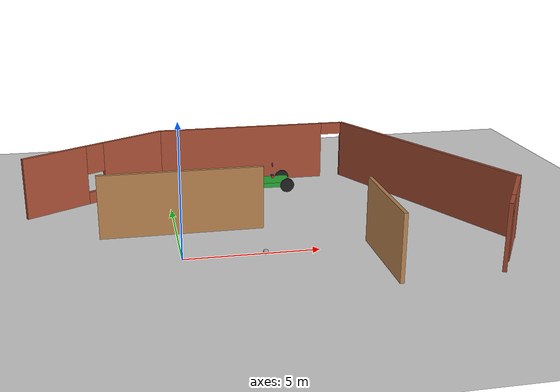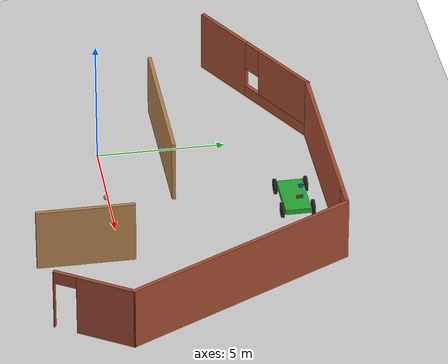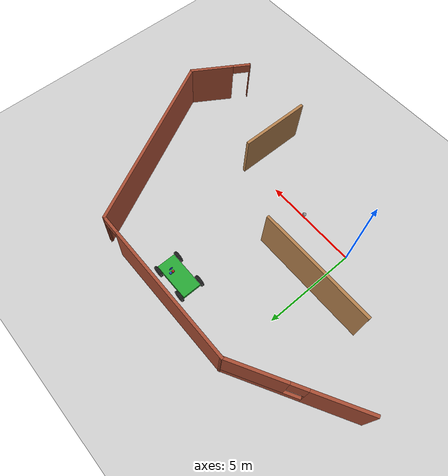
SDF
<sdf version="1.6">
 <world name="default">
  <model name="ground_plane">
   <static>1</static>
   <link name="link">
    <collision name="collision">
     <geometry><plane><normal>0 0 1</normal><size>100 100</size></plane></geometry>
     <surface>
      <contact><collide_bitmask>65535</collide_bitmask></contact>
      <friction><ode><mu>100</mu><mu2>50</mu2></ode></friction>
     </surface>
    </collision>
    <visual name="visual">
     <cast_shadows>0</cast_shadows>
     <geometry><plane><normal>0 0 1</normal><size>100 100</size></plane></geometry>
     <material>
      <script><uri>file://media/materials/scripts/gazebo.material</uri><name>Gazebo/Grey</name></script>
     </material>
    </visual>
   </link>
  </model>
  <model name="car">
   <link name="chassis">
    <pose>0 0 0.3 0 -0 0</pose>
    <collision name="collision"><geometry><box><size>2 1 0.2</size></box></geometry></collision>
    <visual name="visual">
     <geometry><box><size>2 1 0.2</size></box></geometry>
     <material>
      <script><uri>file://media/materials/scripts/gazebo.material</uri><name>Gazebo/Green</name></script>
     </material>
    </visual>
    <inertial>
     <inertia><ixx>1</ixx><ixy>0</ixy><ixz>0</ixz><iyy>1</iyy><iyz>0</iyz><izz>1</izz></inertia>
     <mass>1</mass>
    </inertial>
   </link>
   <link name="front_left_wheel">
    <pose>0.8 0.6 0.3 -0 1.5707 1.5707</pose>
    <collision name="collision">
     <geometry><cylinder><radius>0.3</radius><length>0.1</length></cylinder></geometry>
    </collision>
    <visual name="visual">
     <geometry><cylinder><radius>0.3</radius><length>0.1</length></cylinder></geometry>
     <material>
      <script><uri>file://media/materials/scripts/gazebo.material</uri><name>Gazebo/Black</name></script>
     </material>
    </visual>
    <inertial>
     <inertia><ixx>1</ixx><ixy>0</ixy><ixz>0</ixz><iyy>1</iyy><iyz>0</iyz><izz>1</izz></inertia>
     <mass>1</mass>
    </inertial>
   </link>
   <link name="front_right_wheel">
    <pose>0.8 -0.6 0.3 -0 1.5707 1.5707</pose>
    <collision name="collision">
     <geometry><cylinder><radius>0.3</radius><length>0.1</length></cylinder></geometry>
    </collision>
    <visual name="visual">
     <geometry><cylinder><radius>0.3</radius><length>0.1</length></cylinder></geometry>
     <material>
      <script><uri>file://media/materials/scripts/gazebo.material</uri><name>Gazebo/Black</name></script>
     </material>
    </visual>
    <inertial>
     <inertia><ixx>1</ixx><ixy>0</ixy><ixz>0</ixz><iyy>1</iyy><iyz>0</iyz><izz>1</izz></inertia>
     <mass>1</mass>
    </inertial>
   </link>
   <link name="back_right_wheel">
    <pose>-0.8 -0.6 0.3 -0 1.5707 1.5707</pose>
    <collision name="collision">
     <geometry><cylinder><radius>0.3</radius><length>0.1</length></cylinder></geometry>
    </collision>
    <visual name="visual">
     <geometry><cylinder><radius>0.3</radius><length>0.1</length></cylinder></geometry>
     <material>
      <script><uri>file://media/materials/scripts/gazebo.material</uri><name>Gazebo/Black</name></script>
     </material>
    </visual>
    <inertial>
     <inertia><ixx>1</ixx><ixy>0</ixy><ixz>0</ixz><iyy>1</iyy><iyz>0</iyz><izz>1</izz></inertia>
     <mass>1</mass>
    </inertial>
   </link>
   <link name="back_left_wheel">
    <pose>-0.8 0.6 0.3 -0 1.5707 1.5707</pose>
    <collision name="collision">
     <geometry><cylinder><radius>0.3</radius><length>0.1</length></cylinder></geometry>
    </collision>
    <visual name="visual">
     <geometry><cylinder><radius>0.3</radius><length>0.1</length></cylinder></geometry>
     <material>
      <script><uri>file://media/materials/scripts/gazebo.material</uri><name>Gazebo/Black</name></script>
     </material>
    </visual>
    <inertial>
     <inertia><ixx>1</ixx><ixy>0</ixy><ixz>0</ixz><iyy>1</iyy><iyz>0</iyz><izz>1</izz></inertia>
     <mass>1</mass>
    </inertial>
   </link>
   <link name="gas_pedal">
    <pose>0.3 0.1 0.5 0 -0 0</pose>
    <collision name="collision"><geometry><box><size>0.1 0.1 0.1</size></box></geometry></collision>
    <visual name="visual">
     <geometry><box><size>0.1 0.1 0.1</size></box></geometry>
     <material>
      <script><uri>file://media/materials/scripts/gazebo.material</uri><name>Gazebo/Red</name></script>
     </material>
    </visual>
    <inertial>
     <inertia><ixx>1</ixx><ixy>0</ixy><ixz>0</ixz><iyy>1</iyy><iyz>0</iyz><izz>1</izz></inertia>
     <mass>1</mass>
    </inertial>
   </link>
   <link name="brake_pedal">
    <pose>0.3 0.25 0.5 0 -0 0</pose>
    <collision name="collision"><geometry><box><size>0.1 0.1 0.1</size></box></geometry></collision>
    <visual name="visual">
     <geometry><box><size>0.1 0.1 0.1</size></box></geometry>
     <material>
      <script><uri>file://media/materials/scripts/gazebo.material</uri><name>Gazebo/Blue</name></script>
     </material>
    </visual>
    <inertial>
     <inertia><ixx>1</ixx><ixy>0</ixy><ixz>0</ixz><iyy>1</iyy><iyz>0</iyz><izz>1</izz></inertia>
     <mass>1</mass>
    </inertial>
   </link>
   <link name="steering_wheel">
    <pose>0.3 0.2 1 0 1.5707 0</pose>
    <collision name="collision">
     <geometry><cylinder><radius>0.1</radius><length>0.01</length></cylinder></geometry>
    </collision>
    <visual name="visual">
     <geometry><cylinder><radius>0.1</radius><length>0.01</length></cylinder></geometry>
     <material>
      <script><uri>file://media/materials/scripts/gazebo.material</uri><name>Gazebo/Blue</name></script>
     </material>
    </visual>
    <inertial>
     <inertia><ixx>1</ixx><ixy>0</ixy><ixz>0</ixz><iyy>1</iyy><iyz>0</iyz><izz>1</izz></inertia>
     <mass>1</mass>
    </inertial>
   </link>
   <joint name="gas_joint" type="prismatic">
    <parent>chassis</parent>
    <child>gas_pedal</child>
    <axis>
     <xyz>1 0 0</xyz>
     <limit><lower>0</lower><upper>0.2</upper></limit>
     <use_parent_model_frame>1</use_parent_model_frame>
     <dynamics><spring_reference>0</spring_reference><spring_stiffness>0</spring_stiffness></dynamics>
    </axis>
   </joint>
   <joint name="brake_joint" type="prismatic">
    <parent>chassis</parent>
    <child>brake_pedal</child>
    <axis>
     <xyz>1 0 0</xyz>
     <limit><lower>0</lower><upper>0.2</upper></limit>
     <use_parent_model_frame>1</use_parent_model_frame>
     <dynamics><spring_reference>0</spring_reference><spring_stiffness>0</spring_stiffness></dynamics>
    </axis>
   </joint>
   <joint name="steering_joint" type="revolute">
    <parent>chassis</parent>
    <child>steering_wheel</child>
    <axis>
     <xyz>1 0 0</xyz>
     <limit><lower>-7.853</lower><upper>7.853</upper></limit>
     <use_parent_model_frame>1</use_parent_model_frame>
     <dynamics><spring_reference>0</spring_reference><spring_stiffness>0</spring_stiffness></dynamics>
    </axis>
   </joint>
   <joint name="front_left_joint" type="revolute2">
    <parent>chassis</parent>
    <child>front_left_wheel</child>
    <axis>
     <xyz>0 0 1</xyz>
     <limit><lower>8.64928e-06</lower><upper>8.64928e-06</upper></limit>
     <use_parent_model_frame>1</use_parent_model_frame>
     <dynamics><spring_reference>0</spring_reference><spring_stiffness>0</spring_stiffness></dynamics>
    </axis>
    <axis2>
     <xyz>0 1 0</xyz>
     <use_parent_model_frame>1</use_parent_model_frame>
     <dynamics><spring_reference>0</spring_reference><spring_stiffness>0</spring_stiffness></dynamics>
    </axis2>
    <physics><ode><limit><cfm>0</cfm><erp>0.9</erp></limit></ode></physics>
   </joint>
   <joint name="front_right_joint" type="revolute2">
    <parent>chassis</parent>
    <child>front_right_wheel</child>
    <axis>
     <xyz>0 0 1</xyz>
     <limit><lower>8.64928e-06</lower><upper>8.64928e-06</upper></limit>
     <use_parent_model_frame>1</use_parent_model_frame>
     <dynamics><spring_reference>0</spring_reference><spring_stiffness>0</spring_stiffness></dynamics>
    </axis>
    <axis2>
     <xyz>0 1 0</xyz>
     <use_parent_model_frame>1</use_parent_model_frame>
     <dynamics><spring_reference>0</spring_reference><spring_stiffness>0</spring_stiffness></dynamics>
    </axis2>
    <physics><ode><limit><cfm>0</cfm><erp>0.9</erp></limit></ode></physics>
   </joint>
   <joint name="back_right_joint" type="revolute2">
    <parent>chassis</parent>
    <child>back_right_wheel</child>
    <axis>
     <xyz>0 0 1</xyz>
     <limit><lower>0</lower><upper>0</upper></limit>
     <use_parent_model_frame>1</use_parent_model_frame>
     <dynamics><spring_reference>0</spring_reference><spring_stiffness>0</spring_stiffness></dynamics>
    </axis>
    <axis2>
     <xyz>0 1 0</xyz>
     <use_parent_model_frame>1</use_parent_model_frame>
     <dynamics><spring_reference>0</spring_reference><spring_stiffness>0</spring_stiffness></dynamics>
    </axis2>
    <physics><ode><limit><cfm>0</cfm><erp>0.9</erp></limit></ode></physics>
   </joint>
   <joint name="back_left_joint" type="revolute2">
    <parent>chassis</parent>
    <child>back_left_wheel</child>
    <axis>
     <xyz>0 0 1</xyz>
     <limit><lower>0</lower><upper>0</upper></limit>
     <use_parent_model_frame>1</use_parent_model_frame>
     <dynamics><spring_reference>0</spring_reference><spring_stiffness>0</spring_stiffness></dynamics>
    </axis>
    <axis2>
     <xyz>0 1 0</xyz>
     <use_parent_model_frame>1</use_parent_model_frame>
     <dynamics><spring_reference>0</spring_reference><spring_stiffness>0</spring_stiffness></dynamics>
    </axis2>
    <physics><ode><limit><cfm>0</cfm><erp>0.9</erp></limit></ode></physics>
   </joint>
   <plugin name="vehicle" filename="libVehiclePlugin.so">
    <front_left>front_left_joint</front_left>
    <front_right>front_right_joint</front_right>
    <back_left>back_left_joint</back_left>
    <back_right>back_right_joint</back_right>
    <gas>gas_joint</gas>
    <brake>brake_joint</brake>
    <steering>steering_joint</steering>
    <front_power>10</front_power>
    <rear_power>10</rear_power>
    <tire_angle_range>0.5</tire_angle_range>
    <max_speed>10</max_speed>
    <aero_load>0.1</aero_load>
   </plugin>
   <pose>4.36991 6.9993 -0.002606 -0.000272 0.00092 7.6e-05</pose>
  </model>
  <model name="my_ball">
   <link name="link_0">
    <inertial>
     <mass>1</mass>
     <inertia><ixx>0.1</ixx><ixy>0</ixy><ixz>0</ixz><iyy>0.1</iyy><iyz>0</iyz><izz>0.1</izz></inertia>
    </inertial>
    <visual name="visual">
     <geometry><sphere><radius>0.1</radius></sphere></geometry>
     <material>
      <lighting>1</lighting>
      <script><uri>file://media/materials/scripts/gazebo.material</uri><name>Gazebo/Grey</name></script>
      <shader type="pixel"><normal_map>__default__</normal_map></shader>
      <ambient>1 1 1 1</ambient>
      <diffuse>1 1 1 1</diffuse>
      <specular>1 1 1 1</specular>
      <emissive>1 1 1 1</emissive>
     </material>
    </visual>
    <collision name="collision">
     <geometry><sphere><radius>0.1</radius></sphere></geometry>
     <surface>
      <friction>
       <ode><mu>1</mu><mu2>1</mu2><fdir1>0 0 0</fdir1><slip1>0</slip1><slip2>0</slip2></ode>
       <torsional>
        <coefficient>1</coefficient>
        <patch_radius>0</patch_radius>
        <surface_radius>0</surface_radius>
        <use_patch_radius>1</use_patch_radius>
        <ode><slip>0</slip></ode>
       </torsional>
      </friction>
      <bounce><restitution_coefficient>0</restitution_coefficient><threshold>1e+06</threshold></bounce>
      <contact>
       <collide_without_contact>0</collide_without_contact>
       <collide_without_contact_bitmask>1</collide_without_contact_bitmask>
       <collide_bitmask>1</collide_bitmask>
       <ode>
        <soft_cfm>0</soft_cfm>
        <soft_erp>0.2</soft_erp>
        <kp>1e+13</kp>
        <kd>1</kd>
        <max_vel>0.01</max_vel>
        <min_depth>0</min_depth>
       </ode>
       <bullet>
        <split_impulse>1</split_impulse>
        <split_impulse_penetration_threshold>-0.01</split_impulse_penetration_threshold>
        <soft_cfm>0</soft_cfm>
        <soft_erp>0.2</soft_erp>
        <kp>1e+13</kp>
        <kd>1</kd>
       </bullet>
      </contact>
     </surface>
    </collision>
   </link>
   <static>0</static>
   <pose>2.98691 -0.065546 0.1 0 -0 0</pose>
  </model>
  <model name="office">
   <link name="Wall_10">
    <pose>3.71196 8.6392 0 0 -0 0</pose>
    <visual name="Wall_10_Visual_1">
     <pose>4.12333 0 1.25 0 -0 0</pose>
     <geometry><box><size>0.003332 0.15 2.5</size></box></geometry>
     <material>
      <script><uri>file://media/materials/scripts/gazebo.material</uri><name>Gazebo/Bricks</name></script>
      <ambient>1 1 1 1</ambient>
      <shader type="pixel"/>
      <diffuse>1 1 1 1</diffuse>
      <specular>0.2 0.2 0.2 1</specular>
      <emissive>0 0 0 1</emissive>
     </material>
     <meta><layer>0</layer></meta>
    </visual>
    <visual name="Wall_10_Visual_0">
     <pose>-0.451666 0 1.25 0 -0 0</pose>
     <geometry><box><size>7.34667 0.15 2.5</size></box></geometry>
     <material>
      <script><uri>file://media/materials/scripts/gazebo.material</uri><name>Gazebo/Bricks</name></script>
      <ambient>1 1 1 1</ambient>
      <shader type="pixel"/>
      <diffuse>1 1 1 1</diffuse>
      <specular>0.2 0.2 0.2 1</specular>
      <emissive>0 0 0 1</emissive>
     </material>
     <meta><layer>0</layer></meta>
    </visual>
    <visual name="Wall_10_Visual_2">
     <pose>3.67167 0 2.25 0 -0 0</pose>
     <geometry><box><size>0.9 0.15 0.5</size></box></geometry>
     <material>
      <script><uri>file://media/materials/scripts/gazebo.material</uri><name>Gazebo/Bricks</name></script>
      <ambient>1 1 1 1</ambient>
      <shader type="pixel"/>
      <diffuse>1 1 1 1</diffuse>
      <specular>0.2 0.2 0.2 1</specular>
      <emissive>0 0 0 1</emissive>
     </material>
     <meta><layer>0</layer></meta>
    </visual>
    <collision name="Wall_10_Collision_0">
     <pose>-0.451666 0 1.25 0 -0 0</pose>
     <geometry><box><size>7.34667 0.15 2.5</size></box></geometry>
     <surface>
      <friction>
       <ode><mu>1</mu><mu2>1</mu2><fdir1>0 0 0</fdir1><slip1>0</slip1><slip2>0</slip2></ode>
       <torsional>
        <coefficient>1</coefficient>
        <patch_radius>0</patch_radius>
        <surface_radius>0</surface_radius>
        <use_patch_radius>1</use_patch_radius>
        <ode><slip>0</slip></ode>
       </torsional>
      </friction>
      <bounce><restitution_coefficient>0</restitution_coefficient><threshold>1e+06</threshold></bounce>
      <contact>
       <collide_without_contact>0</collide_without_contact>
       <collide_without_contact_bitmask>1</collide_without_contact_bitmask>
       <collide_bitmask>1</collide_bitmask>
       <ode>
        <soft_cfm>0</soft_cfm>
        <soft_erp>0.2</soft_erp>
        <kp>1e+13</kp>
        <kd>1</kd>
        <max_vel>0.01</max_vel>
        <min_depth>0</min_depth>
       </ode>
       <bullet>
        <split_impulse>1</split_impulse>
        <split_impulse_penetration_threshold>-0.01</split_impulse_penetration_threshold>
        <soft_cfm>0</soft_cfm>
        <soft_erp>0.2</soft_erp>
        <kp>1e+13</kp>
        <kd>1</kd>
       </bullet>
      </contact>
     </surface>
    </collision>
    <collision name="Wall_10_Collision_2">
     <pose>3.67167 0 2.25 0 -0 0</pose>
     <geometry><box><size>0.9 0.15 0.5</size></box></geometry>
     <surface>
      <friction>
       <ode><mu>1</mu><mu2>1</mu2><fdir1>0 0 0</fdir1><slip1>0</slip1><slip2>0</slip2></ode>
       <torsional>
        <coefficient>1</coefficient>
        <patch_radius>0</patch_radius>
        <surface_radius>0</surface_radius>
        <use_patch_radius>1</use_patch_radius>
        <ode><slip>0</slip></ode>
       </torsional>
      </friction>
      <bounce><restitution_coefficient>0</restitution_coefficient><threshold>1e+06</threshold></bounce>
      <contact>
       <collide_without_contact>0</collide_without_contact>
       <collide_without_contact_bitmask>1</collide_without_contact_bitmask>
       <collide_bitmask>1</collide_bitmask>
       <ode>
        <soft_cfm>0</soft_cfm>
        <soft_erp>0.2</soft_erp>
        <kp>1e+13</kp>
        <kd>1</kd>
        <max_vel>0.01</max_vel>
        <min_depth>0</min_depth>
       </ode>
       <bullet>
        <split_impulse>1</split_impulse>
        <split_impulse_penetration_threshold>-0.01</split_impulse_penetration_threshold>
        <soft_cfm>0</soft_cfm>
        <soft_erp>0.2</soft_erp>
        <kp>1e+13</kp>
        <kd>1</kd>
       </bullet>
      </contact>
     </surface>
    </collision>
    <collision name="Wall_10_Collision_1">
     <pose>4.12333 0 1.25 0 -0 0</pose>
     <geometry><box><size>0.003332 0.15 2.5</size></box></geometry>
     <surface>
      <friction>
       <ode><mu>1</mu><mu2>1</mu2><fdir1>0 0 0</fdir1><slip1>0</slip1><slip2>0</slip2></ode>
       <torsional>
        <coefficient>1</coefficient>
        <patch_radius>0</patch_radius>
        <surface_radius>0</surface_radius>
        <use_patch_radius>1</use_patch_radius>
        <ode><slip>0</slip></ode>
       </torsional>
      </friction>
      <bounce><restitution_coefficient>0</restitution_coefficient><threshold>1e+06</threshold></bounce>
      <contact>
       <collide_without_contact>0</collide_without_contact>
       <collide_without_contact_bitmask>1</collide_without_contact_bitmask>
       <collide_bitmask>1</collide_bitmask>
       <ode>
        <soft_cfm>0</soft_cfm>
        <soft_erp>0.2</soft_erp>
        <kp>1e+13</kp>
        <kd>1</kd>
        <max_vel>0.01</max_vel>
        <min_depth>0</min_depth>
       </ode>
       <bullet>
        <split_impulse>1</split_impulse>
        <split_impulse_penetration_threshold>-0.01</split_impulse_penetration_threshold>
        <soft_cfm>0</soft_cfm>
        <soft_erp>0.2</soft_erp>
        <kp>1e+13</kp>
        <kd>1</kd>
       </bullet>
      </contact>
     </surface>
    </collision>
   </link>
   <link name="Wall_12">
    <pose>10.0538 4.3089 0 0 0 -1.1105</pose>
    <inertial>
     <inertia><ixx>0</ixx><ixy>0</ixy><ixz>0</ixz><iyy>0</iyy><iyz>0</iyz><izz>0</izz></inertia>
     <mass>0</mass>
    </inertial>
    <visual name="Wall_12_Visual">
     <pose>0 0 1.25 0 -0 0</pose>
     <geometry><box><size>9.75381 0.15 2.5</size></box></geometry>
     <material>
      <script><uri>file://media/materials/scripts/gazebo.material</uri><name>Gazebo/Bricks</name></script>
      <ambient>0.435294 0.796078 0.67451 1</ambient>
      <shader type="pixel"/>
      <diffuse>1 1 1 1</diffuse>
      <specular>0.2 0.2 0.2 1</specular>
      <emissive>0 0 0 1</emissive>
     </material>
     <meta><layer>0</layer></meta>
    </visual>
    <collision name="Wall_12_Collision">
     <pose>0 0 1.25 0 -0 0</pose>
     <geometry><box><size>9.75381 0.15 2.5</size></box></geometry>
     <surface>
      <friction>
       <ode><mu>1</mu><mu2>1</mu2><fdir1>0 0 0</fdir1><slip1>0</slip1><slip2>0</slip2></ode>
       <torsional>
        <coefficient>1</coefficient>
        <patch_radius>0</patch_radius>
        <surface_radius>0</surface_radius>
        <use_patch_radius>1</use_patch_radius>
        <ode><slip>0</slip></ode>
       </torsional>
      </friction>
      <bounce><restitution_coefficient>0</restitution_coefficient><threshold>1e+06</threshold></bounce>
      <contact>
       <collide_without_contact>0</collide_without_contact>
       <collide_without_contact_bitmask>1</collide_without_contact_bitmask>
       <collide_bitmask>1</collide_bitmask>
       <ode>
        <soft_cfm>0</soft_cfm>
        <soft_erp>0.2</soft_erp>
        <kp>1e+13</kp>
        <kd>1</kd>
        <max_vel>0.01</max_vel>
        <min_depth>0</min_depth>
       </ode>
       <bullet>
        <split_impulse>1</split_impulse>
        <split_impulse_penetration_threshold>-0.01</split_impulse_penetration_threshold>
        <soft_cfm>0</soft_cfm>
        <soft_erp>0.2</soft_erp>
        <kp>1e+13</kp>
        <kd>1</kd>
       </bullet>
      </contact>
     </surface>
    </collision>
   </link>
   <link name="Wall_14">
    <pose>11.3708 -1.34055 0 0 -0 -2.12201</pose>
    <inertial>
     <inertia><ixx>0</ixx><ixy>0</ixy><ixz>0</ixz><iyy>0</iyy><iyz>0</iyz><izz>0</izz></inertia>
     <mass>0</mass>
    </inertial>
    <visual name="Wall_14_Visual_2">
     <pose>1.13537 0 2.25 0 -0 0</pose>
     <geometry><box><size>0.904766 0.15 0.5</size></box></geometry>
     <material>
      <script><uri>file://media/materials/scripts/gazebo.material</uri><name>Gazebo/Bricks</name></script>
      <ambient>0.435294 0.796078 0.67451 1</ambient>
      <shader type="pixel"/>
      <diffuse>1 1 1 1</diffuse>
      <specular>0.2 0.2 0.2 1</specular>
      <emissive>0 0 0 1</emissive>
     </material>
     <meta><layer>0</layer></meta>
    </visual>
    <visual name="Wall_14_Visual_0">
     <pose>-0.469815 0 1.25 0 -0 0</pose>
     <geometry><box><size>2.32261 0.15 2.5</size></box></geometry>
     <material>
      <script><uri>file://media/materials/scripts/gazebo.material</uri><name>Gazebo/Bricks</name></script>
      <ambient>0.435294 0.796078 0.67451 1</ambient>
      <shader type="pixel"/>
      <diffuse>1 1 1 1</diffuse>
      <specular>0.2 0.2 0.2 1</specular>
      <emissive>0 0 0 1</emissive>
     </material>
     <meta><layer>0</layer></meta>
    </visual>
    <visual name="Wall_14_Visual_1">
     <pose>1.60519 0 1.25 0 -0 0</pose>
     <geometry><box><size>0.039702 0.15 2.5</size></box></geometry>
     <material>
      <script><uri>file://media/materials/scripts/gazebo.material</uri><name>Gazebo/Bricks</name></script>
      <ambient>0.435294 0.796078 0.67451 1</ambient>
      <shader type="pixel"/>
      <diffuse>1 1 1 1</diffuse>
      <specular>0.2 0.2 0.2 1</specular>
      <emissive>0 0 0 1</emissive>
     </material>
     <meta><layer>0</layer></meta>
    </visual>
    <collision name="Wall_14_Collision_2">
     <pose>1.13537 0 2.25 0 -0 0</pose>
     <geometry><box><size>0.904766 0.15 0.5</size></box></geometry>
     <surface>
      <friction>
       <ode><mu>1</mu><mu2>1</mu2><fdir1>0 0 0</fdir1><slip1>0</slip1><slip2>0</slip2></ode>
       <torsional>
        <coefficient>1</coefficient>
        <patch_radius>0</patch_radius>
        <surface_radius>0</surface_radius>
        <use_patch_radius>1</use_patch_radius>
        <ode><slip>0</slip></ode>
       </torsional>
      </friction>
      <bounce><restitution_coefficient>0</restitution_coefficient><threshold>1e+06</threshold></bounce>
      <contact>
       <collide_without_contact>0</collide_without_contact>
       <collide_without_contact_bitmask>1</collide_without_contact_bitmask>
       <collide_bitmask>1</collide_bitmask>
       <ode>
        <soft_cfm>0</soft_cfm>
        <soft_erp>0.2</soft_erp>
        <kp>1e+13</kp>
        <kd>1</kd>
        <max_vel>0.01</max_vel>
        <min_depth>0</min_depth>
       </ode>
       <bullet>
        <split_impulse>1</split_impulse>
        <split_impulse_penetration_threshold>-0.01</split_impulse_penetration_threshold>
        <soft_cfm>0</soft_cfm>
        <soft_erp>0.2</soft_erp>
        <kp>1e+13</kp>
        <kd>1</kd>
       </bullet>
      </contact>
     </surface>
    </collision>
    <collision name="Wall_14_Collision_1">
     <pose>1.60519 0 1.25 0 -0 0</pose>
     <geometry><box><size>0.039702 0.15 2.5</size></box></geometry>
     <surface>
      <friction>
       <ode><mu>1</mu><mu2>1</mu2><fdir1>0 0 0</fdir1><slip1>0</slip1><slip2>0</slip2></ode>
       <torsional>
        <coefficient>1</coefficient>
        <patch_radius>0</patch_radius>
        <surface_radius>0</surface_radius>
        <use_patch_radius>1</use_patch_radius>
        <ode><slip>0</slip></ode>
       </torsional>
      </friction>
      <bounce><restitution_coefficient>0</restitution_coefficient><threshold>1e+06</threshold></bounce>
      <contact>
       <collide_without_contact>0</collide_without_contact>
       <collide_without_contact_bitmask>1</collide_without_contact_bitmask>
       <collide_bitmask>1</collide_bitmask>
       <ode>
        <soft_cfm>0</soft_cfm>
        <soft_erp>0.2</soft_erp>
        <kp>1e+13</kp>
        <kd>1</kd>
        <max_vel>0.01</max_vel>
        <min_depth>0</min_depth>
       </ode>
       <bullet>
        <split_impulse>1</split_impulse>
        <split_impulse_penetration_threshold>-0.01</split_impulse_penetration_threshold>
        <soft_cfm>0</soft_cfm>
        <soft_erp>0.2</soft_erp>
        <kp>1e+13</kp>
        <kd>1</kd>
       </bullet>
      </contact>
     </surface>
    </collision>
    <collision name="Wall_14_Collision_0">
     <pose>-0.469815 0 1.25 0 -0 0</pose>
     <geometry><box><size>2.32261 0.15 2.5</size></box></geometry>
     <surface>
      <friction>
       <ode><mu>1</mu><mu2>1</mu2><fdir1>0 0 0</fdir1><slip1>0</slip1><slip2>0</slip2></ode>
       <torsional>
        <coefficient>1</coefficient>
        <patch_radius>0</patch_radius>
        <surface_radius>0</surface_radius>
        <use_patch_radius>1</use_patch_radius>
        <ode><slip>0</slip></ode>
       </torsional>
      </friction>
      <bounce><restitution_coefficient>0</restitution_coefficient><threshold>1e+06</threshold></bounce>
      <contact>
       <collide_without_contact>0</collide_without_contact>
       <collide_without_contact_bitmask>1</collide_without_contact_bitmask>
       <collide_bitmask>1</collide_bitmask>
       <ode>
        <soft_cfm>0</soft_cfm>
        <soft_erp>0.2</soft_erp>
        <kp>1e+13</kp>
        <kd>1</kd>
        <max_vel>0.01</max_vel>
        <min_depth>0</min_depth>
       </ode>
       <bullet>
        <split_impulse>1</split_impulse>
        <split_impulse_penetration_threshold>-0.01</split_impulse_penetration_threshold>
        <soft_cfm>0</soft_cfm>
        <soft_erp>0.2</soft_erp>
        <kp>1e+13</kp>
        <kd>1</kd>
       </bullet>
      </contact>
     </surface>
    </collision>
   </link>
   <link name="Wall_24">
    <pose>6.78266 -1.03979 0 0 -0 1.5708</pose>
    <visual name="Wall_24_Visual">
     <pose>0 0 1.25 0 -0 0</pose>
     <geometry><box><size>3.75 0.15 2.5</size></box></geometry>
     <material>
      <script><uri>file://media/materials/scripts/gazebo.material</uri><name>Gazebo/Wood</name></script>
      <ambient>0.435294 0.796078 0.67451 1</ambient>
      <shader type="pixel"/>
      <diffuse>1 1 1 1</diffuse>
      <specular>0.2 0.2 0.2 1</specular>
      <emissive>0 0 0 1</emissive>
     </material>
     <meta><layer>0</layer></meta>
    </visual>
    <collision name="Wall_24_Collision">
     <pose>0 0 1.25 0 -0 0</pose>
     <geometry><box><size>3.75 0.15 2.5</size></box></geometry>
     <surface>
      <friction>
       <ode><mu>1</mu><mu2>1</mu2><fdir1>0 0 0</fdir1><slip1>0</slip1><slip2>0</slip2></ode>
       <torsional>
        <coefficient>1</coefficient>
        <patch_radius>0</patch_radius>
        <surface_radius>0</surface_radius>
        <use_patch_radius>1</use_patch_radius>
        <ode><slip>0</slip></ode>
       </torsional>
      </friction>
      <bounce><restitution_coefficient>0</restitution_coefficient><threshold>1e+06</threshold></bounce>
      <contact>
       <collide_without_contact>0</collide_without_contact>
       <collide_without_contact_bitmask>1</collide_without_contact_bitmask>
       <collide_bitmask>1</collide_bitmask>
       <ode>
        <soft_cfm>0</soft_cfm>
        <soft_erp>0.2</soft_erp>
        <kp>1e+13</kp>
        <kd>1</kd>
        <max_vel>0.01</max_vel>
        <min_depth>0</min_depth>
       </ode>
       <bullet>
        <split_impulse>1</split_impulse>
        <split_impulse_penetration_threshold>-0.01</split_impulse_penetration_threshold>
        <soft_cfm>0</soft_cfm>
        <soft_erp>0.2</soft_erp>
        <kp>1e+13</kp>
        <kd>1</kd>
       </bullet>
      </contact>
     </surface>
    </collision>
   </link>
   <link name="Wall_27">
    <pose>0.058577 2.83612 0 0 -0 0</pose>
    <visual name="Wall_27_Visual">
     <pose>0 0 1.25 0 -0 0</pose>
     <geometry><box><size>6.25 0.15 2.5</size></box></geometry>
     <material>
      <script><uri>file://media/materials/scripts/gazebo.material</uri><name>Gazebo/Wood</name></script>
      <ambient>0.435294 0.796078 0.67451 1</ambient>
      <shader type="pixel"/>
      <diffuse>1 1 1 1</diffuse>
      <specular>0.2 0.2 0.2 1</specular>
      <emissive>0 0 0 1</emissive>
     </material>
     <meta><layer>0</layer></meta>
    </visual>
    <collision name="Wall_27_Collision">
     <pose>0 0 1.25 0 -0 0</pose>
     <geometry><box><size>6.25 0.15 2.5</size></box></geometry>
     <surface>
      <friction>
       <ode><mu>1</mu><mu2>1</mu2><fdir1>0 0 0</fdir1><slip1>0</slip1><slip2>0</slip2></ode>
       <torsional>
        <coefficient>1</coefficient>
        <patch_radius>0</patch_radius>
        <surface_radius>0</surface_radius>
        <use_patch_radius>1</use_patch_radius>
        <ode><slip>0</slip></ode>
       </torsional>
      </friction>
      <bounce><restitution_coefficient>0</restitution_coefficient><threshold>1e+06</threshold></bounce>
      <contact>
       <collide_without_contact>0</collide_without_contact>
       <collide_without_contact_bitmask>1</collide_without_contact_bitmask>
       <collide_bitmask>1</collide_bitmask>
       <ode>
        <soft_cfm>0</soft_cfm>
        <soft_erp>0.2</soft_erp>
        <kp>1e+13</kp>
        <kd>1</kd>
        <max_vel>0.01</max_vel>
        <min_depth>0</min_depth>
       </ode>
       <bullet>
        <split_impulse>1</split_impulse>
        <split_impulse_penetration_threshold>-0.01</split_impulse_penetration_threshold>
        <soft_cfm>0</soft_cfm>
        <soft_erp>0.2</soft_erp>
        <kp>1e+13</kp>
        <kd>1</kd>
       </bullet>
      </contact>
     </surface>
    </collision>
   </link>
   <link name="Wall_9">
    <pose>-3.08767 7.0517 0 0 -0 0.523599</pose>
    <visual name="Wall_9_Visual_0">
     <pose>-1.86997 0 1.25 0 -0 0</pose>
     <geometry><box><size>2.76007 0.15 2.5</size></box></geometry>
     <material>
      <script><uri>file://media/materials/scripts/gazebo.material</uri><name>Gazebo/Bricks</name></script>
      <ambient>0.435294 0.796078 0.67451 1</ambient>
      <shader type="pixel"/>
      <diffuse>1 1 1 1</diffuse>
      <specular>0.2 0.2 0.2 1</specular>
      <emissive>0 0 0 1</emissive>
     </material>
     <meta><layer>0</layer></meta>
    </visual>
    <visual name="Wall_9_Visual_1">
     <pose>1.38003 0 0.25 0 -0 0</pose>
     <geometry><box><size>3.73993 0.15 0.5</size></box></geometry>
     <material>
      <script><uri>file://media/materials/scripts/gazebo.material</uri><name>Gazebo/Bricks</name></script>
      <ambient>0.435294 0.796078 0.67451 1</ambient>
      <shader type="pixel"/>
      <diffuse>1 1 1 1</diffuse>
      <specular>0.2 0.2 0.2 1</specular>
      <emissive>0 0 0 1</emissive>
     </material>
     <meta><layer>0</layer></meta>
    </visual>
    <visual name="Wall_9_Visual_2">
     <pose>1.78003 0 1.5 0 -0 0</pose>
     <geometry><box><size>2.93993 0.15 2</size></box></geometry>
     <material>
      <script><uri>file://media/materials/scripts/gazebo.material</uri><name>Gazebo/Bricks</name></script>
      <ambient>0.435294 0.796078 0.67451 1</ambient>
      <shader type="pixel"/>
      <diffuse>1 1 1 1</diffuse>
      <specular>0.2 0.2 0.2 1</specular>
      <emissive>0 0 0 1</emissive>
     </material>
     <meta><layer>0</layer></meta>
    </visual>
    <visual name="Wall_9_Visual_3">
     <pose>-0.089932 0 1.9 0 -0 0</pose>
     <geometry><box><size>0.8 0.15 1.2</size></box></geometry>
     <material>
      <script><uri>file://media/materials/scripts/gazebo.material</uri><name>Gazebo/Bricks</name></script>
      <ambient>0.435294 0.796078 0.67451 1</ambient>
      <shader type="pixel"/>
      <diffuse>1 1 1 1</diffuse>
      <specular>0.2 0.2 0.2 1</specular>
      <emissive>0 0 0 1</emissive>
     </material>
     <meta><layer>0</layer></meta>
    </visual>
    <collision name="Wall_9_Collision_0">
     <pose>-1.86997 0 1.25 0 -0 0</pose>
     <geometry><box><size>2.76007 0.15 2.5</size></box></geometry>
     <surface>
      <friction>
       <ode><mu>1</mu><mu2>1</mu2><fdir1>0 0 0</fdir1><slip1>0</slip1><slip2>0</slip2></ode>
       <torsional>
        <coefficient>1</coefficient>
        <patch_radius>0</patch_radius>
        <surface_radius>0</surface_radius>
        <use_patch_radius>1</use_patch_radius>
        <ode><slip>0</slip></ode>
       </torsional>
      </friction>
      <bounce><restitution_coefficient>0</restitution_coefficient><threshold>1e+06</threshold></bounce>
      <contact>
       <collide_without_contact>0</collide_without_contact>
       <collide_without_contact_bitmask>1</collide_without_contact_bitmask>
       <collide_bitmask>1</collide_bitmask>
       <ode>
        <soft_cfm>0</soft_cfm>
        <soft_erp>0.2</soft_erp>
        <kp>1e+13</kp>
        <kd>1</kd>
        <max_vel>0.01</max_vel>
        <min_depth>0</min_depth>
       </ode>
       <bullet>
        <split_impulse>1</split_impulse>
        <split_impulse_penetration_threshold>-0.01</split_impulse_penetration_threshold>
        <soft_cfm>0</soft_cfm>
        <soft_erp>0.2</soft_erp>
        <kp>1e+13</kp>
        <kd>1</kd>
       </bullet>
      </contact>
     </surface>
    </collision>
    <collision name="Wall_9_Collision_1">
     <pose>1.38003 0 0.25 0 -0 0</pose>
     <geometry><box><size>3.73993 0.15 0.5</size></box></geometry>
     <surface>
      <friction>
       <ode><mu>1</mu><mu2>1</mu2><fdir1>0 0 0</fdir1><slip1>0</slip1><slip2>0</slip2></ode>
       <torsional>
        <coefficient>1</coefficient>
        <patch_radius>0</patch_radius>
        <surface_radius>0</surface_radius>
        <use_patch_radius>1</use_patch_radius>
        <ode><slip>0</slip></ode>
       </torsional>
      </friction>
      <bounce><restitution_coefficient>0</restitution_coefficient><threshold>1e+06</threshold></bounce>
      <contact>
       <collide_without_contact>0</collide_without_contact>
       <collide_without_contact_bitmask>1</collide_without_contact_bitmask>
       <collide_bitmask>1</collide_bitmask>
       <ode>
        <soft_cfm>0</soft_cfm>
        <soft_erp>0.2</soft_erp>
        <kp>1e+13</kp>
        <kd>1</kd>
        <max_vel>0.01</max_vel>
        <min_depth>0</min_depth>
       </ode>
       <bullet>
        <split_impulse>1</split_impulse>
        <split_impulse_penetration_threshold>-0.01</split_impulse_penetration_threshold>
        <soft_cfm>0</soft_cfm>
        <soft_erp>0.2</soft_erp>
        <kp>1e+13</kp>
        <kd>1</kd>
       </bullet>
      </contact>
     </surface>
    </collision>
    <collision name="Wall_9_Collision_2">
     <pose>1.78003 0 1.5 0 -0 0</pose>
     <geometry><box><size>2.93993 0.15 2</size></box></geometry>
     <surface>
      <friction>
       <ode><mu>1</mu><mu2>1</mu2><fdir1>0 0 0</fdir1><slip1>0</slip1><slip2>0</slip2></ode>
       <torsional>
        <coefficient>1</coefficient>
        <patch_radius>0</patch_radius>
        <surface_radius>0</surface_radius>
        <use_patch_radius>1</use_patch_radius>
        <ode><slip>0</slip></ode>
       </torsional>
      </friction>
      <bounce><restitution_coefficient>0</restitution_coefficient><threshold>1e+06</threshold></bounce>
      <contact>
       <collide_without_contact>0</collide_without_contact>
       <collide_without_contact_bitmask>1</collide_without_contact_bitmask>
       <collide_bitmask>1</collide_bitmask>
       <ode>
        <soft_cfm>0</soft_cfm>
        <soft_erp>0.2</soft_erp>
        <kp>1e+13</kp>
        <kd>1</kd>
        <max_vel>0.01</max_vel>
        <min_depth>0</min_depth>
       </ode>
       <bullet>
        <split_impulse>1</split_impulse>
        <split_impulse_penetration_threshold>-0.01</split_impulse_penetration_threshold>
        <soft_cfm>0</soft_cfm>
        <soft_erp>0.2</soft_erp>
        <kp>1e+13</kp>
        <kd>1</kd>
       </bullet>
      </contact>
     </surface>
    </collision>
    <collision name="Wall_9_Collision_3">
     <pose>-0.089932 0 1.9 0 -0 0</pose>
     <geometry><box><size>0.8 0.15 1.2</size></box></geometry>
     <surface>
      <friction>
       <ode><mu>1</mu><mu2>1</mu2><fdir1>0 0 0</fdir1><slip1>0</slip1><slip2>0</slip2></ode>
       <torsional>
        <coefficient>1</coefficient>
        <patch_radius>0</patch_radius>
        <surface_radius>0</surface_radius>
        <use_patch_radius>1</use_patch_radius>
        <ode><slip>0</slip></ode>
       </torsional>
      </friction>
      <bounce><restitution_coefficient>0</restitution_coefficient><threshold>1e+06</threshold></bounce>
      <contact>
       <collide_without_contact>0</collide_without_contact>
       <collide_without_contact_bitmask>1</collide_without_contact_bitmask>
       <collide_bitmask>1</collide_bitmask>
       <ode>
        <soft_cfm>0</soft_cfm>
        <soft_erp>0.2</soft_erp>
        <kp>1e+13</kp>
        <kd>1</kd>
        <max_vel>0.01</max_vel>
        <min_depth>0</min_depth>
       </ode>
       <bullet>
        <split_impulse>1</split_impulse>
        <split_impulse_penetration_threshold>-0.01</split_impulse_penetration_threshold>
        <soft_cfm>0</soft_cfm>
        <soft_erp>0.2</soft_erp>
        <kp>1e+13</kp>
        <kd>1</kd>
       </bullet>
      </contact>
     </surface>
    </collision>
   </link>
   <static>1</static>
   <pose>0.19118 -0.3324 0 0 -0 0</pose>
  </model>
 </world>
</sdf>
